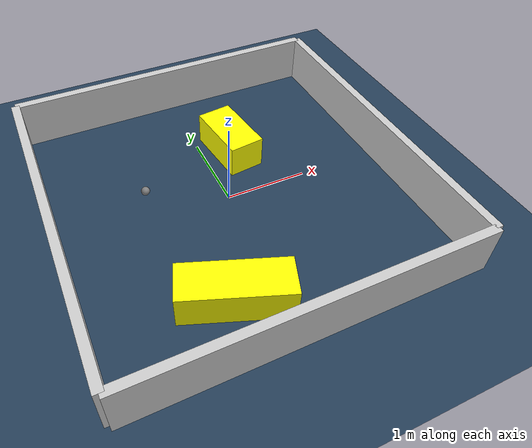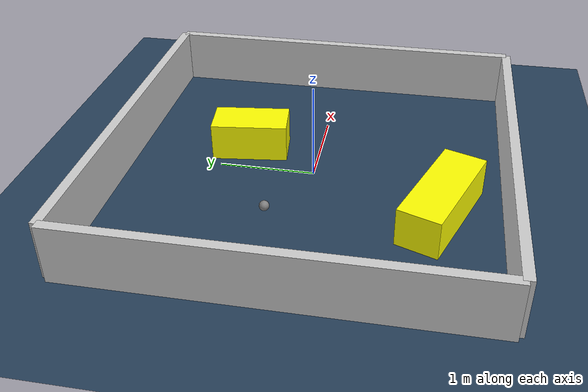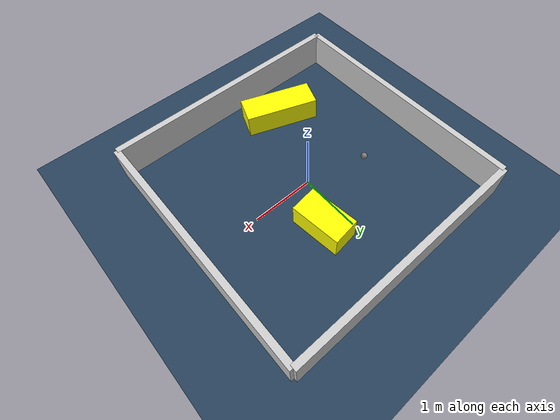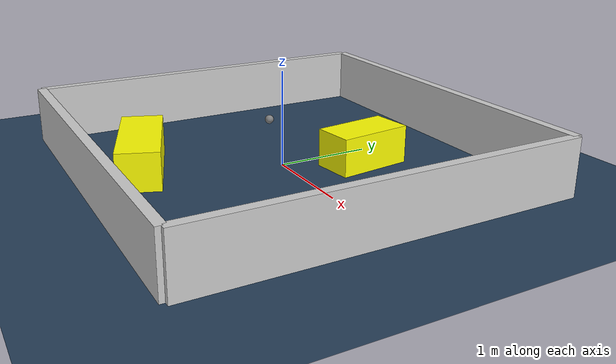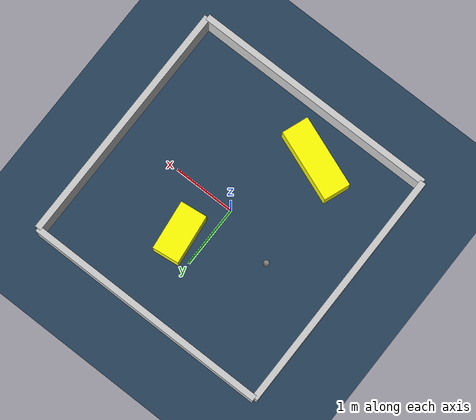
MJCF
<?xml version="1.0" ?>
<mujoco model="generated_environment">
  <option timestep="0.01" integrator="RK4" cone="elliptic"/>
  <default>
    <geom density="1"/>
  </default>
  <asset>
    <texture builtin="gradient" height="3072" rgb1="0.3 0.5 0.7" rgb2="0 0 0" type="skybox" width="512"/>
    <texture builtin="checker" height="300" mark="edge" markrgb="0.8 0.8 0.8" name="groundplane" rgb1="0.2 0.3 0.4" rgb2="0.1 0.2 0.3" type="2d" width="300"/>
    <material name="groundplane" reflectance="0.2" texrepeat="5 5" texture="groundplane" texuniform="true"/>
    <material name="robot" rgba="0.0 1.0 0.0 1"/>
  </asset>
  <worldbody>
    <light dir="0 0 -1" directional="true" pos="0 0 1.5"/>
    <geom condim="4" friction="1.0 0.005 0.001" material="groundplane" name="floor" size="0 0 0.05" type="plane"/>
    <body name="walls">
      <geom name="wall_1" condim="4" pos="-2.0 0.0 0.3" rgba="0.800000011920929 0.800000011920929 0.800000011920929 1.0" size="0.05 2.0 0.3" type="box"/>
      <geom name="wall_2" condim="4" pos="2.0 0.0 0.3" rgba="0.800000011920929 0.800000011920929 0.800000011920929 1.0" size="0.05 2.0 0.3" type="box"/>
      <geom name="wall_3" condim="4" pos="0.0 -2.0 0.3" rgba="0.800000011920929 0.800000011920929 0.800000011920929 1.0" size="2.0 0.05 0.3" type="box"/>
      <geom name="wall_4" condim="4" pos="0.0 2.0 0.3" rgba="0.800000011920929 0.800000011920929 0.800000011920929 1.0" size="2.0 0.05 0.3" type="box"/>
    </body>
    <body name="robot">
      <joint name="joint_x" type="slide" pos="0 0 0" axis="1 0 0"/>
      <joint name="joint_y" type="slide" pos="0 0 0" axis="0 1 0"/>
      <geom name="robot" type="sphere" pos="-0.906342979212161 0.3145345470647465 0.2" size="0.05" mass="5." friction="1.0 0.005 0.0001" condim="4"/>
      <site name="sensor_ball"/>
    </body>
    <body name="obstacle_1_movable">
      <geom name="obstacle_1_movable" condim="4" pos="0.36066156493919577 0.7531712250814007 0.2" euler="0 0 186.7948785007961" friction="1.0 0.005 0.001" rgba="1 1 0 1" size="0.21658290886785456 0.4024283883992875 0.2" type="box" mass="0.1"/>
      <joint type="free"/>
    </body>
    <body name="obstacle_2_movable">
      <geom name="obstacle_2_movable" condim="4" pos="-0.5420274943366181 -1.343763766610082 0.2" euler="0 0 69.57839117512032" friction="1.0 0.005 0.001" rgba="1 1 0 1" size="0.21970712731521638 0.5916910783796993 0.2" type="box" mass="0.1"/>
      <joint type="free"/>
    </body>
  </worldbody>
  <actuator>
    <motor name="actuator_x" joint="joint_x" gear="1" ctrlrange="-1 1"/>
    <motor name="actuator_y" joint="joint_y" gear="1" ctrlrange="-1 1"/>
  </actuator>
</mujoco>
